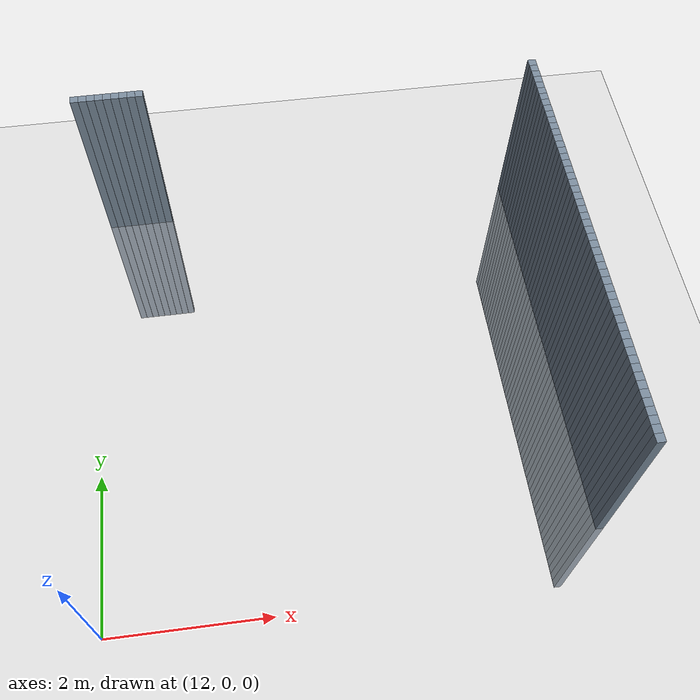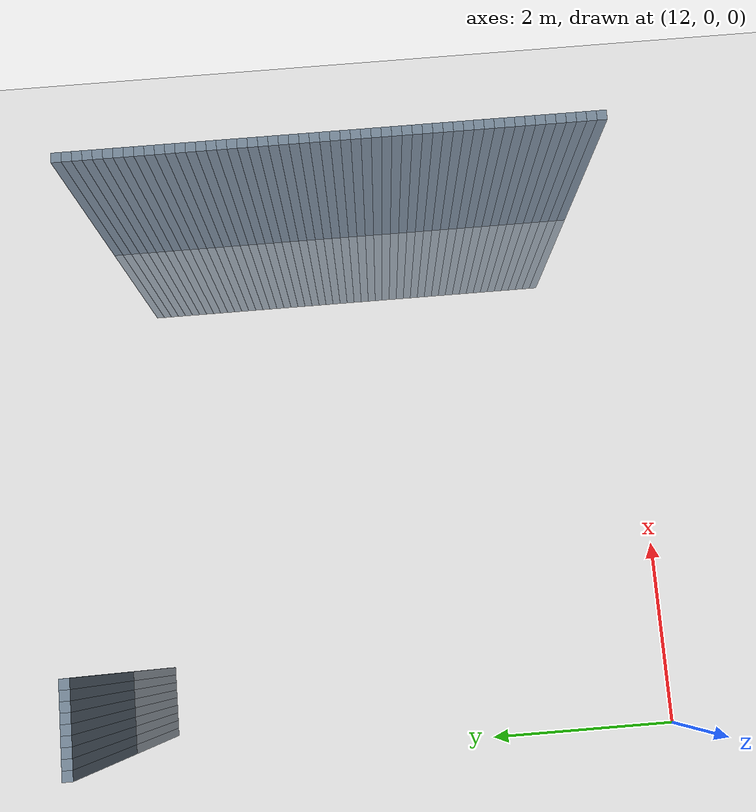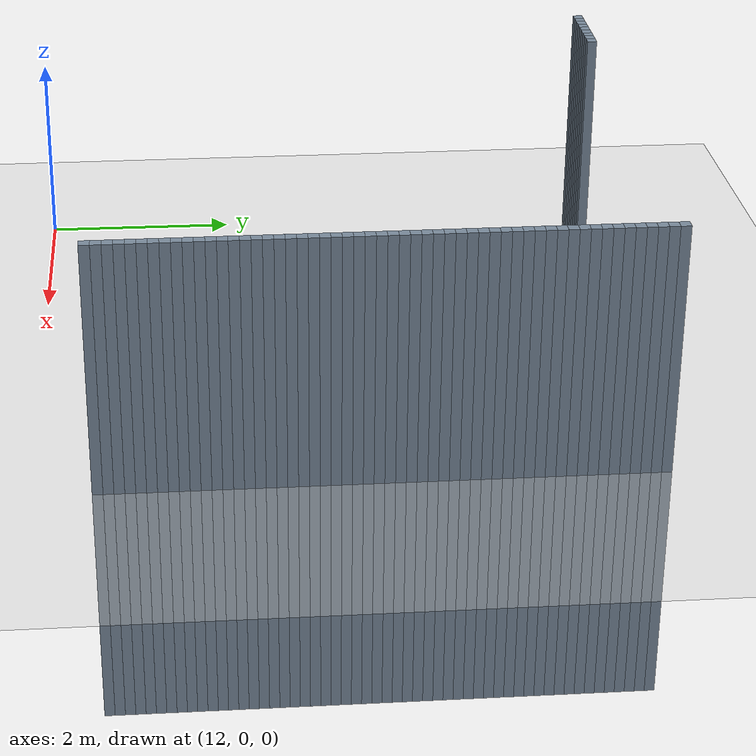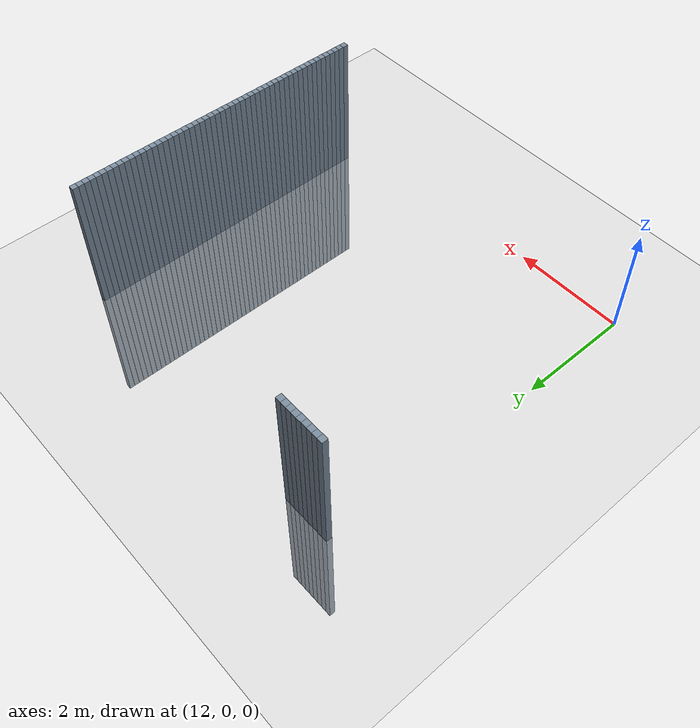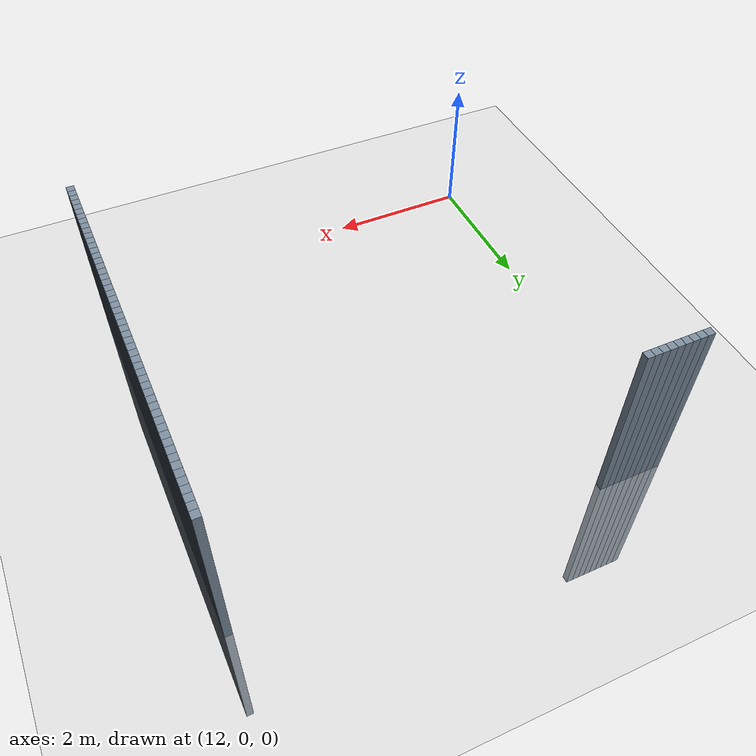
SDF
<sdf version="1.6">
 <world name="default">
  <model name="ground_plane">
   <static>1</static>
   <link name="link">
    <collision name="collision">
     <geometry><plane><normal>0 0 1</normal><size>100 100</size></plane></geometry>
     <surface><friction><ode><mu>100</mu><mu2>50</mu2></ode></friction></surface>
    </collision>
    <visual name="visual">
     <cast_shadows>0</cast_shadows>
     <geometry><plane><normal>0 0 1</normal><size>100 100</size></plane></geometry>
     <material>
      <script><uri>file://media/materials/scripts/gazebo.material</uri><name>Gazebo/Grey</name></script>
     </material>
    </visual>
   </link>
  </model>
  <model name="unit_cylinder_782">
   <static>1</static>
   <pose>12.2 6 0 0 -0 0</pose>
   <link name="link">
    <inertial>
     <mass>1</mass>
     <inertia><ixx>0.145833</ixx><ixy>0</ixy><ixz>0</ixz><iyy>0.145833</iyy><iyz>0</iyz><izz>0.125</izz></inertia>
    </inertial>
    <collision name="collision"><geometry><box><size>0.1 0.1 5</size></box></geometry></collision>
    <visual name="visual">
     <geometry><box><size>0.1 0.1 5</size></box></geometry>
     <material><ambient>0.466667 0.533333 0.6 1</ambient><diffuse>0.466667 0.533333 0.6 1</diffuse></material>
     <material>
      <script><name>Gazebo/Grey</name><uri>file://media/materials/scripts/gazebo.material</uri></script>
     </material>
    </visual>
   </link>
  </model>
  <model name="unit_cylinder_784">
   <static>1</static>
   <pose>12.3 6 0 0 -0 0</pose>
   <link name="link">
    <inertial>
     <mass>1</mass>
     <inertia><ixx>0.145833</ixx><ixy>0</ixy><ixz>0</ixz><iyy>0.145833</iyy><iyz>0</iyz><izz>0.125</izz></inertia>
    </inertial>
    <collision name="collision"><geometry><box><size>0.1 0.1 5</size></box></geometry></collision>
    <visual name="visual">
     <geometry><box><size>0.1 0.1 5</size></box></geometry>
     <material><ambient>0.466667 0.533333 0.6 1</ambient><diffuse>0.466667 0.533333 0.6 1</diffuse></material>
     <material>
      <script><name>Gazebo/Grey</name><uri>file://media/materials/scripts/gazebo.material</uri></script>
     </material>
    </visual>
   </link>
  </model>
  <model name="unit_cylinder_786">
   <static>1</static>
   <pose>12.4 6 0 0 -0 0</pose>
   <link name="link">
    <inertial>
     <mass>1</mass>
     <inertia><ixx>0.145833</ixx><ixy>0</ixy><ixz>0</ixz><iyy>0.145833</iyy><iyz>0</iyz><izz>0.125</izz></inertia>
    </inertial>
    <collision name="collision"><geometry><box><size>0.1 0.1 5</size></box></geometry></collision>
    <visual name="visual">
     <geometry><box><size>0.1 0.1 5</size></box></geometry>
     <material><ambient>0.466667 0.533333 0.6 1</ambient><diffuse>0.466667 0.533333 0.6 1</diffuse></material>
     <material>
      <script><name>Gazebo/Grey</name><uri>file://media/materials/scripts/gazebo.material</uri></script>
     </material>
    </visual>
   </link>
  </model>
  <model name="unit_cylinder_788">
   <static>1</static>
   <pose>12.5 6 0 0 -0 0</pose>
   <link name="link">
    <inertial>
     <mass>1</mass>
     <inertia><ixx>0.145833</ixx><ixy>0</ixy><ixz>0</ixz><iyy>0.145833</iyy><iyz>0</iyz><izz>0.125</izz></inertia>
    </inertial>
    <collision name="collision"><geometry><box><size>0.1 0.1 5</size></box></geometry></collision>
    <visual name="visual">
     <geometry><box><size>0.1 0.1 5</size></box></geometry>
     <material><ambient>0.466667 0.533333 0.6 1</ambient><diffuse>0.466667 0.533333 0.6 1</diffuse></material>
     <material>
      <script><name>Gazebo/Grey</name><uri>file://media/materials/scripts/gazebo.material</uri></script>
     </material>
    </visual>
   </link>
  </model>
  <model name="unit_cylinder_790">
   <static>1</static>
   <pose>12.6 6 0 0 -0 0</pose>
   <link name="link">
    <inertial>
     <mass>1</mass>
     <inertia><ixx>0.145833</ixx><ixy>0</ixy><ixz>0</ixz><iyy>0.145833</iyy><iyz>0</iyz><izz>0.125</izz></inertia>
    </inertial>
    <collision name="collision"><geometry><box><size>0.1 0.1 5</size></box></geometry></collision>
    <visual name="visual">
     <geometry><box><size>0.1 0.1 5</size></box></geometry>
     <material><ambient>0.466667 0.533333 0.6 1</ambient><diffuse>0.466667 0.533333 0.6 1</diffuse></material>
     <material>
      <script><name>Gazebo/Grey</name><uri>file://media/materials/scripts/gazebo.material</uri></script>
     </material>
    </visual>
   </link>
  </model>
  <model name="unit_cylinder_792">
   <static>1</static>
   <pose>12.7 6 0 0 -0 0</pose>
   <link name="link">
    <inertial>
     <mass>1</mass>
     <inertia><ixx>0.145833</ixx><ixy>0</ixy><ixz>0</ixz><iyy>0.145833</iyy><iyz>0</iyz><izz>0.125</izz></inertia>
    </inertial>
    <collision name="collision"><geometry><box><size>0.1 0.1 5</size></box></geometry></collision>
    <visual name="visual">
     <geometry><box><size>0.1 0.1 5</size></box></geometry>
     <material><ambient>0.466667 0.533333 0.6 1</ambient><diffuse>0.466667 0.533333 0.6 1</diffuse></material>
     <material>
      <script><name>Gazebo/Grey</name><uri>file://media/materials/scripts/gazebo.material</uri></script>
     </material>
    </visual>
   </link>
  </model>
  <model name="unit_cylinder_794">
   <static>1</static>
   <pose>12.8 6 0 0 -0 0</pose>
   <link name="link">
    <inertial>
     <mass>1</mass>
     <inertia><ixx>0.145833</ixx><ixy>0</ixy><ixz>0</ixz><iyy>0.145833</iyy><iyz>0</iyz><izz>0.125</izz></inertia>
    </inertial>
    <collision name="collision"><geometry><box><size>0.1 0.1 5</size></box></geometry></collision>
    <visual name="visual">
     <geometry><box><size>0.1 0.1 5</size></box></geometry>
     <material><ambient>0.466667 0.533333 0.6 1</ambient><diffuse>0.466667 0.533333 0.6 1</diffuse></material>
     <material>
      <script><name>Gazebo/Grey</name><uri>file://media/materials/scripts/gazebo.material</uri></script>
     </material>
    </visual>
   </link>
  </model>
  <model name="unit_cylinder_796">
   <static>1</static>
   <pose>12.9 6 0 0 -0 0</pose>
   <link name="link">
    <inertial>
     <mass>1</mass>
     <inertia><ixx>0.145833</ixx><ixy>0</ixy><ixz>0</ixz><iyy>0.145833</iyy><iyz>0</iyz><izz>0.125</izz></inertia>
    </inertial>
    <collision name="collision"><geometry><box><size>0.1 0.1 5</size></box></geometry></collision>
    <visual name="visual">
     <geometry><box><size>0.1 0.1 5</size></box></geometry>
     <material><ambient>0.466667 0.533333 0.6 1</ambient><diffuse>0.466667 0.533333 0.6 1</diffuse></material>
     <material>
      <script><name>Gazebo/Grey</name><uri>file://media/materials/scripts/gazebo.material</uri></script>
     </material>
    </visual>
   </link>
  </model>
  <model name="unit_cylinder_798">
   <static>1</static>
   <pose>13 6 0 0 -0 0</pose>
   <link name="link">
    <inertial>
     <mass>1</mass>
     <inertia><ixx>0.145833</ixx><ixy>0</ixy><ixz>0</ixz><iyy>0.145833</iyy><iyz>0</iyz><izz>0.125</izz></inertia>
    </inertial>
    <collision name="collision"><geometry><box><size>0.1 0.1 5</size></box></geometry></collision>
    <visual name="visual">
     <geometry><box><size>0.1 0.1 5</size></box></geometry>
     <material><ambient>0.466667 0.533333 0.6 1</ambient><diffuse>0.466667 0.533333 0.6 1</diffuse></material>
     <material>
      <script><name>Gazebo/Grey</name><uri>file://media/materials/scripts/gazebo.material</uri></script>
     </material>
    </visual>
   </link>
  </model>
  <model name="unit_cylinder_903">
   <static>1</static>
   <pose>18 0.6 0 0 -0 0</pose>
   <link name="link">
    <inertial>
     <mass>1</mass>
     <inertia><ixx>0.145833</ixx><ixy>0</ixy><ixz>0</ixz><iyy>0.145833</iyy><iyz>0</iyz><izz>0.125</izz></inertia>
    </inertial>
    <collision name="collision"><geometry><box><size>0.1 0.1 5</size></box></geometry></collision>
    <visual name="visual">
     <geometry><box><size>0.1 0.1 5</size></box></geometry>
     <material><ambient>0.466667 0.533333 0.6 1</ambient><diffuse>0.466667 0.533333 0.6 1</diffuse></material>
     <material>
      <script><name>Gazebo/Grey</name><uri>file://media/materials/scripts/gazebo.material</uri></script>
     </material>
    </visual>
   </link>
  </model>
  <model name="unit_cylinder_904">
   <static>1</static>
   <pose>18 0.7 0 0 -0 0</pose>
   <link name="link">
    <inertial>
     <mass>1</mass>
     <inertia><ixx>0.145833</ixx><ixy>0</ixy><ixz>0</ixz><iyy>0.145833</iyy><iyz>0</iyz><izz>0.125</izz></inertia>
    </inertial>
    <collision name="collision"><geometry><box><size>0.1 0.1 5</size></box></geometry></collision>
    <visual name="visual">
     <geometry><box><size>0.1 0.1 5</size></box></geometry>
     <material><ambient>0.466667 0.533333 0.6 1</ambient><diffuse>0.466667 0.533333 0.6 1</diffuse></material>
     <material>
      <script><name>Gazebo/Grey</name><uri>file://media/materials/scripts/gazebo.material</uri></script>
     </material>
    </visual>
   </link>
  </model>
  <model name="unit_cylinder_905">
   <static>1</static>
   <pose>18 0.8 0 0 -0 0</pose>
   <link name="link">
    <inertial>
     <mass>1</mass>
     <inertia><ixx>0.145833</ixx><ixy>0</ixy><ixz>0</ixz><iyy>0.145833</iyy><iyz>0</iyz><izz>0.125</izz></inertia>
    </inertial>
    <collision name="collision"><geometry><box><size>0.1 0.1 5</size></box></geometry></collision>
    <visual name="visual">
     <geometry><box><size>0.1 0.1 5</size></box></geometry>
     <material><ambient>0.466667 0.533333 0.6 1</ambient><diffuse>0.466667 0.533333 0.6 1</diffuse></material>
     <material>
      <script><name>Gazebo/Grey</name><uri>file://media/materials/scripts/gazebo.material</uri></script>
     </material>
    </visual>
   </link>
  </model>
  <model name="unit_cylinder_906">
   <static>1</static>
   <pose>18 0.9 0 0 -0 0</pose>
   <link name="link">
    <inertial>
     <mass>1</mass>
     <inertia><ixx>0.145833</ixx><ixy>0</ixy><ixz>0</ixz><iyy>0.145833</iyy><iyz>0</iyz><izz>0.125</izz></inertia>
    </inertial>
    <collision name="collision"><geometry><box><size>0.1 0.1 5</size></box></geometry></collision>
    <visual name="visual">
     <geometry><box><size>0.1 0.1 5</size></box></geometry>
     <material><ambient>0.466667 0.533333 0.6 1</ambient><diffuse>0.466667 0.533333 0.6 1</diffuse></material>
     <material>
      <script><name>Gazebo/Grey</name><uri>file://media/materials/scripts/gazebo.material</uri></script>
     </material>
    </visual>
   </link>
  </model>
  <model name="unit_cylinder_907">
   <static>1</static>
   <pose>18 1 0 0 -0 0</pose>
   <link name="link">
    <inertial>
     <mass>1</mass>
     <inertia><ixx>0.145833</ixx><ixy>0</ixy><ixz>0</ixz><iyy>0.145833</iyy><iyz>0</iyz><izz>0.125</izz></inertia>
    </inertial>
    <collision name="collision"><geometry><box><size>0.1 0.1 5</size></box></geometry></collision>
    <visual name="visual">
     <geometry><box><size>0.1 0.1 5</size></box></geometry>
     <material><ambient>0.466667 0.533333 0.6 1</ambient><diffuse>0.466667 0.533333 0.6 1</diffuse></material>
     <material>
      <script><name>Gazebo/Grey</name><uri>file://media/materials/scripts/gazebo.material</uri></script>
     </material>
    </visual>
   </link>
  </model>
  <model name="unit_cylinder_908">
   <static>1</static>
   <pose>18 1.1 0 0 -0 0</pose>
   <link name="link">
    <inertial>
     <mass>1</mass>
     <inertia><ixx>0.145833</ixx><ixy>0</ixy><ixz>0</ixz><iyy>0.145833</iyy><iyz>0</iyz><izz>0.125</izz></inertia>
    </inertial>
    <collision name="collision"><geometry><box><size>0.1 0.1 5</size></box></geometry></collision>
    <visual name="visual">
     <geometry><box><size>0.1 0.1 5</size></box></geometry>
     <material><ambient>0.466667 0.533333 0.6 1</ambient><diffuse>0.466667 0.533333 0.6 1</diffuse></material>
     <material>
      <script><name>Gazebo/Grey</name><uri>file://media/materials/scripts/gazebo.material</uri></script>
     </material>
    </visual>
   </link>
  </model>
  <model name="unit_cylinder_909">
   <static>1</static>
   <pose>18 1.2 0 0 -0 0</pose>
   <link name="link">
    <inertial>
     <mass>1</mass>
     <inertia><ixx>0.145833</ixx><ixy>0</ixy><ixz>0</ixz><iyy>0.145833</iyy><iyz>0</iyz><izz>0.125</izz></inertia>
    </inertial>
    <collision name="collision"><geometry><box><size>0.1 0.1 5</size></box></geometry></collision>
    <visual name="visual">
     <geometry><box><size>0.1 0.1 5</size></box></geometry>
     <material><ambient>0.466667 0.533333 0.6 1</ambient><diffuse>0.466667 0.533333 0.6 1</diffuse></material>
     <material>
      <script><name>Gazebo/Grey</name><uri>file://media/materials/scripts/gazebo.material</uri></script>
     </material>
    </visual>
   </link>
  </model>
  <model name="unit_cylinder_910">
   <static>1</static>
   <pose>18 1.3 0 0 -0 0</pose>
   <link name="link">
    <inertial>
     <mass>1</mass>
     <inertia><ixx>0.145833</ixx><ixy>0</ixy><ixz>0</ixz><iyy>0.145833</iyy><iyz>0</iyz><izz>0.125</izz></inertia>
    </inertial>
    <collision name="collision"><geometry><box><size>0.1 0.1 5</size></box></geometry></collision>
    <visual name="visual">
     <geometry><box><size>0.1 0.1 5</size></box></geometry>
     <material><ambient>0.466667 0.533333 0.6 1</ambient><diffuse>0.466667 0.533333 0.6 1</diffuse></material>
     <material>
      <script><name>Gazebo/Grey</name><uri>file://media/materials/scripts/gazebo.material</uri></script>
     </material>
    </visual>
   </link>
  </model>
  <model name="unit_cylinder_911">
   <static>1</static>
   <pose>18 1.4 0 0 -0 0</pose>
   <link name="link">
    <inertial>
     <mass>1</mass>
     <inertia><ixx>0.145833</ixx><ixy>0</ixy><ixz>0</ixz><iyy>0.145833</iyy><iyz>0</iyz><izz>0.125</izz></inertia>
    </inertial>
    <collision name="collision"><geometry><box><size>0.1 0.1 5</size></box></geometry></collision>
    <visual name="visual">
     <geometry><box><size>0.1 0.1 5</size></box></geometry>
     <material><ambient>0.466667 0.533333 0.6 1</ambient><diffuse>0.466667 0.533333 0.6 1</diffuse></material>
     <material>
      <script><name>Gazebo/Grey</name><uri>file://media/materials/scripts/gazebo.material</uri></script>
     </material>
    </visual>
   </link>
  </model>
  <model name="unit_cylinder_912">
   <static>1</static>
   <pose>18 1.5 0 0 -0 0</pose>
   <link name="link">
    <inertial>
     <mass>1</mass>
     <inertia><ixx>0.145833</ixx><ixy>0</ixy><ixz>0</ixz><iyy>0.145833</iyy><iyz>0</iyz><izz>0.125</izz></inertia>
    </inertial>
    <collision name="collision"><geometry><box><size>0.1 0.1 5</size></box></geometry></collision>
    <visual name="visual">
     <geometry><box><size>0.1 0.1 5</size></box></geometry>
     <material><ambient>0.466667 0.533333 0.6 1</ambient><diffuse>0.466667 0.533333 0.6 1</diffuse></material>
     <material>
      <script><name>Gazebo/Grey</name><uri>file://media/materials/scripts/gazebo.material</uri></script>
     </material>
    </visual>
   </link>
  </model>
  <model name="unit_cylinder_913">
   <static>1</static>
   <pose>18 1.6 0 0 -0 0</pose>
   <link name="link">
    <inertial>
     <mass>1</mass>
     <inertia><ixx>0.145833</ixx><ixy>0</ixy><ixz>0</ixz><iyy>0.145833</iyy><iyz>0</iyz><izz>0.125</izz></inertia>
    </inertial>
    <collision name="collision"><geometry><box><size>0.1 0.1 5</size></box></geometry></collision>
    <visual name="visual">
     <geometry><box><size>0.1 0.1 5</size></box></geometry>
     <material><ambient>0.466667 0.533333 0.6 1</ambient><diffuse>0.466667 0.533333 0.6 1</diffuse></material>
     <material>
      <script><name>Gazebo/Grey</name><uri>file://media/materials/scripts/gazebo.material</uri></script>
     </material>
    </visual>
   </link>
  </model>
  <model name="unit_cylinder_914">
   <static>1</static>
   <pose>18 1.7 0 0 -0 0</pose>
   <link name="link">
    <inertial>
     <mass>1</mass>
     <inertia><ixx>0.145833</ixx><ixy>0</ixy><ixz>0</ixz><iyy>0.145833</iyy><iyz>0</iyz><izz>0.125</izz></inertia>
    </inertial>
    <collision name="collision"><geometry><box><size>0.1 0.1 5</size></box></geometry></collision>
    <visual name="visual">
     <geometry><box><size>0.1 0.1 5</size></box></geometry>
     <material><ambient>0.466667 0.533333 0.6 1</ambient><diffuse>0.466667 0.533333 0.6 1</diffuse></material>
     <material>
      <script><name>Gazebo/Grey</name><uri>file://media/materials/scripts/gazebo.material</uri></script>
     </material>
    </visual>
   </link>
  </model>
  <model name="unit_cylinder_915">
   <static>1</static>
   <pose>18 1.8 0 0 -0 0</pose>
   <link name="link">
    <inertial>
     <mass>1</mass>
     <inertia><ixx>0.145833</ixx><ixy>0</ixy><ixz>0</ixz><iyy>0.145833</iyy><iyz>0</iyz><izz>0.125</izz></inertia>
    </inertial>
    <collision name="collision"><geometry><box><size>0.1 0.1 5</size></box></geometry></collision>
    <visual name="visual">
     <geometry><box><size>0.1 0.1 5</size></box></geometry>
     <material><ambient>0.466667 0.533333 0.6 1</ambient><diffuse>0.466667 0.533333 0.6 1</diffuse></material>
     <material>
      <script><name>Gazebo/Grey</name><uri>file://media/materials/scripts/gazebo.material</uri></script>
     </material>
    </visual>
   </link>
  </model>
  <model name="unit_cylinder_916">
   <static>1</static>
   <pose>18 1.9 0 0 -0 0</pose>
   <link name="link">
    <inertial>
     <mass>1</mass>
     <inertia><ixx>0.145833</ixx><ixy>0</ixy><ixz>0</ixz><iyy>0.145833</iyy><iyz>0</iyz><izz>0.125</izz></inertia>
    </inertial>
    <collision name="collision"><geometry><box><size>0.1 0.1 5</size></box></geometry></collision>
    <visual name="visual">
     <geometry><box><size>0.1 0.1 5</size></box></geometry>
     <material><ambient>0.466667 0.533333 0.6 1</ambient><diffuse>0.466667 0.533333 0.6 1</diffuse></material>
     <material>
      <script><name>Gazebo/Grey</name><uri>file://media/materials/scripts/gazebo.material</uri></script>
     </material>
    </visual>
   </link>
  </model>
  <model name="unit_cylinder_917">
   <static>1</static>
   <pose>18 2 0 0 -0 0</pose>
   <link name="link">
    <inertial>
     <mass>1</mass>
     <inertia><ixx>0.145833</ixx><ixy>0</ixy><ixz>0</ixz><iyy>0.145833</iyy><iyz>0</iyz><izz>0.125</izz></inertia>
    </inertial>
    <collision name="collision"><geometry><box><size>0.1 0.1 5</size></box></geometry></collision>
    <visual name="visual">
     <geometry><box><size>0.1 0.1 5</size></box></geometry>
     <material><ambient>0.466667 0.533333 0.6 1</ambient><diffuse>0.466667 0.533333 0.6 1</diffuse></material>
     <material>
      <script><name>Gazebo/Grey</name><uri>file://media/materials/scripts/gazebo.material</uri></script>
     </material>
    </visual>
   </link>
  </model>
  <model name="unit_cylinder_918">
   <static>1</static>
   <pose>18 2.1 0 0 -0 0</pose>
   <link name="link">
    <inertial>
     <mass>1</mass>
     <inertia><ixx>0.145833</ixx><ixy>0</ixy><ixz>0</ixz><iyy>0.145833</iyy><iyz>0</iyz><izz>0.125</izz></inertia>
    </inertial>
    <collision name="collision"><geometry><box><size>0.1 0.1 5</size></box></geometry></collision>
    <visual name="visual">
     <geometry><box><size>0.1 0.1 5</size></box></geometry>
     <material><ambient>0.466667 0.533333 0.6 1</ambient><diffuse>0.466667 0.533333 0.6 1</diffuse></material>
     <material>
      <script><name>Gazebo/Grey</name><uri>file://media/materials/scripts/gazebo.material</uri></script>
     </material>
    </visual>
   </link>
  </model>
  <model name="unit_cylinder_919">
   <static>1</static>
   <pose>18 2.2 0 0 -0 0</pose>
   <link name="link">
    <inertial>
     <mass>1</mass>
     <inertia><ixx>0.145833</ixx><ixy>0</ixy><ixz>0</ixz><iyy>0.145833</iyy><iyz>0</iyz><izz>0.125</izz></inertia>
    </inertial>
    <collision name="collision"><geometry><box><size>0.1 0.1 5</size></box></geometry></collision>
    <visual name="visual">
     <geometry><box><size>0.1 0.1 5</size></box></geometry>
     <material><ambient>0.466667 0.533333 0.6 1</ambient><diffuse>0.466667 0.533333 0.6 1</diffuse></material>
     <material>
      <script><name>Gazebo/Grey</name><uri>file://media/materials/scripts/gazebo.material</uri></script>
     </material>
    </visual>
   </link>
  </model>
  <model name="unit_cylinder_920">
   <static>1</static>
   <pose>18 2.3 0 0 -0 0</pose>
   <link name="link">
    <inertial>
     <mass>1</mass>
     <inertia><ixx>0.145833</ixx><ixy>0</ixy><ixz>0</ixz><iyy>0.145833</iyy><iyz>0</iyz><izz>0.125</izz></inertia>
    </inertial>
    <collision name="collision"><geometry><box><size>0.1 0.1 5</size></box></geometry></collision>
    <visual name="visual">
     <geometry><box><size>0.1 0.1 5</size></box></geometry>
     <material><ambient>0.466667 0.533333 0.6 1</ambient><diffuse>0.466667 0.533333 0.6 1</diffuse></material>
     <material>
      <script><name>Gazebo/Grey</name><uri>file://media/materials/scripts/gazebo.material</uri></script>
     </material>
    </visual>
   </link>
  </model>
  <model name="unit_cylinder_921">
   <static>1</static>
   <pose>18 2.4 0 0 -0 0</pose>
   <link name="link">
    <inertial>
     <mass>1</mass>
     <inertia><ixx>0.145833</ixx><ixy>0</ixy><ixz>0</ixz><iyy>0.145833</iyy><iyz>0</iyz><izz>0.125</izz></inertia>
    </inertial>
    <collision name="collision"><geometry><box><size>0.1 0.1 5</size></box></geometry></collision>
    <visual name="visual">
     <geometry><box><size>0.1 0.1 5</size></box></geometry>
     <material><ambient>0.466667 0.533333 0.6 1</ambient><diffuse>0.466667 0.533333 0.6 1</diffuse></material>
     <material>
      <script><name>Gazebo/Grey</name><uri>file://media/materials/scripts/gazebo.material</uri></script>
     </material>
    </visual>
   </link>
  </model>
  <model name="unit_cylinder_922">
   <static>1</static>
   <pose>18 2.5 0 0 -0 0</pose>
   <link name="link">
    <inertial>
     <mass>1</mass>
     <inertia><ixx>0.145833</ixx><ixy>0</ixy><ixz>0</ixz><iyy>0.145833</iyy><iyz>0</iyz><izz>0.125</izz></inertia>
    </inertial>
    <collision name="collision"><geometry><box><size>0.1 0.1 5</size></box></geometry></collision>
    <visual name="visual">
     <geometry><box><size>0.1 0.1 5</size></box></geometry>
     <material><ambient>0.466667 0.533333 0.6 1</ambient><diffuse>0.466667 0.533333 0.6 1</diffuse></material>
     <material>
      <script><name>Gazebo/Grey</name><uri>file://media/materials/scripts/gazebo.material</uri></script>
     </material>
    </visual>
   </link>
  </model>
  <model name="unit_cylinder_923">
   <static>1</static>
   <pose>18 2.6 0 0 -0 0</pose>
   <link name="link">
    <inertial>
     <mass>1</mass>
     <inertia><ixx>0.145833</ixx><ixy>0</ixy><ixz>0</ixz><iyy>0.145833</iyy><iyz>0</iyz><izz>0.125</izz></inertia>
    </inertial>
    <collision name="collision"><geometry><box><size>0.1 0.1 5</size></box></geometry></collision>
    <visual name="visual">
     <geometry><box><size>0.1 0.1 5</size></box></geometry>
     <material><ambient>0.466667 0.533333 0.6 1</ambient><diffuse>0.466667 0.533333 0.6 1</diffuse></material>
     <material>
      <script><name>Gazebo/Grey</name><uri>file://media/materials/scripts/gazebo.material</uri></script>
     </material>
    </visual>
   </link>
  </model>
  <model name="unit_cylinder_924">
   <static>1</static>
   <pose>18 2.7 0 0 -0 0</pose>
   <link name="link">
    <inertial>
     <mass>1</mass>
     <inertia><ixx>0.145833</ixx><ixy>0</ixy><ixz>0</ixz><iyy>0.145833</iyy><iyz>0</iyz><izz>0.125</izz></inertia>
    </inertial>
    <collision name="collision"><geometry><box><size>0.1 0.1 5</size></box></geometry></collision>
    <visual name="visual">
     <geometry><box><size>0.1 0.1 5</size></box></geometry>
     <material><ambient>0.466667 0.533333 0.6 1</ambient><diffuse>0.466667 0.533333 0.6 1</diffuse></material>
     <material>
      <script><name>Gazebo/Grey</name><uri>file://media/materials/scripts/gazebo.material</uri></script>
     </material>
    </visual>
   </link>
  </model>
  <model name="unit_cylinder_925">
   <static>1</static>
   <pose>18 2.8 0 0 -0 0</pose>
   <link name="link">
    <inertial>
     <mass>1</mass>
     <inertia><ixx>0.145833</ixx><ixy>0</ixy><ixz>0</ixz><iyy>0.145833</iyy><iyz>0</iyz><izz>0.125</izz></inertia>
    </inertial>
    <collision name="collision"><geometry><box><size>0.1 0.1 5</size></box></geometry></collision>
    <visual name="visual">
     <geometry><box><size>0.1 0.1 5</size></box></geometry>
     <material><ambient>0.466667 0.533333 0.6 1</ambient><diffuse>0.466667 0.533333 0.6 1</diffuse></material>
     <material>
      <script><name>Gazebo/Grey</name><uri>file://media/materials/scripts/gazebo.material</uri></script>
     </material>
    </visual>
   </link>
  </model>
  <model name="unit_cylinder_926">
   <static>1</static>
   <pose>18 2.9 0 0 -0 0</pose>
   <link name="link">
    <inertial>
     <mass>1</mass>
     <inertia><ixx>0.145833</ixx><ixy>0</ixy><ixz>0</ixz><iyy>0.145833</iyy><iyz>0</iyz><izz>0.125</izz></inertia>
    </inertial>
    <collision name="collision"><geometry><box><size>0.1 0.1 5</size></box></geometry></collision>
    <visual name="visual">
     <geometry><box><size>0.1 0.1 5</size></box></geometry>
     <material><ambient>0.466667 0.533333 0.6 1</ambient><diffuse>0.466667 0.533333 0.6 1</diffuse></material>
     <material>
      <script><name>Gazebo/Grey</name><uri>file://media/materials/scripts/gazebo.material</uri></script>
     </material>
    </visual>
   </link>
  </model>
  <model name="unit_cylinder_927">
   <static>1</static>
   <pose>18 3 0 0 -0 0</pose>
   <link name="link">
    <inertial>
     <mass>1</mass>
     <inertia><ixx>0.145833</ixx><ixy>0</ixy><ixz>0</ixz><iyy>0.145833</iyy><iyz>0</iyz><izz>0.125</izz></inertia>
    </inertial>
    <collision name="collision"><geometry><box><size>0.1 0.1 5</size></box></geometry></collision>
    <visual name="visual">
     <geometry><box><size>0.1 0.1 5</size></box></geometry>
     <material><ambient>0.466667 0.533333 0.6 1</ambient><diffuse>0.466667 0.533333 0.6 1</diffuse></material>
     <material>
      <script><name>Gazebo/Grey</name><uri>file://media/materials/scripts/gazebo.material</uri></script>
     </material>
    </visual>
   </link>
  </model>
  <model name="unit_cylinder_928">
   <static>1</static>
   <pose>18 3.1 0 0 -0 0</pose>
   <link name="link">
    <inertial>
     <mass>1</mass>
     <inertia><ixx>0.145833</ixx><ixy>0</ixy><ixz>0</ixz><iyy>0.145833</iyy><iyz>0</iyz><izz>0.125</izz></inertia>
    </inertial>
    <collision name="collision"><geometry><box><size>0.1 0.1 5</size></box></geometry></collision>
    <visual name="visual">
     <geometry><box><size>0.1 0.1 5</size></box></geometry>
     <material><ambient>0.466667 0.533333 0.6 1</ambient><diffuse>0.466667 0.533333 0.6 1</diffuse></material>
     <material>
      <script><name>Gazebo/Grey</name><uri>file://media/materials/scripts/gazebo.material</uri></script>
     </material>
    </visual>
   </link>
  </model>
  <model name="unit_cylinder_929">
   <static>1</static>
   <pose>18 3.2 0 0 -0 0</pose>
   <link name="link">
    <inertial>
     <mass>1</mass>
     <inertia><ixx>0.145833</ixx><ixy>0</ixy><ixz>0</ixz><iyy>0.145833</iyy><iyz>0</iyz><izz>0.125</izz></inertia>
    </inertial>
    <collision name="collision"><geometry><box><size>0.1 0.1 5</size></box></geometry></collision>
    <visual name="visual">
     <geometry><box><size>0.1 0.1 5</size></box></geometry>
     <material><ambient>0.466667 0.533333 0.6 1</ambient><diffuse>0.466667 0.533333 0.6 1</diffuse></material>
     <material>
      <script><name>Gazebo/Grey</name><uri>file://media/materials/scripts/gazebo.material</uri></script>
     </material>
    </visual>
   </link>
  </model>
  <model name="unit_cylinder_930">
   <static>1</static>
   <pose>18 3.3 0 0 -0 0</pose>
   <link name="link">
    <inertial>
     <mass>1</mass>
     <inertia><ixx>0.145833</ixx><ixy>0</ixy><ixz>0</ixz><iyy>0.145833</iyy><iyz>0</iyz><izz>0.125</izz></inertia>
    </inertial>
    <collision name="collision"><geometry><box><size>0.1 0.1 5</size></box></geometry></collision>
    <visual name="visual">
     <geometry><box><size>0.1 0.1 5</size></box></geometry>
     <material><ambient>0.466667 0.533333 0.6 1</ambient><diffuse>0.466667 0.533333 0.6 1</diffuse></material>
     <material>
      <script><name>Gazebo/Grey</name><uri>file://media/materials/scripts/gazebo.material</uri></script>
     </material>
    </visual>
   </link>
  </model>
  <model name="unit_cylinder_931">
   <static>1</static>
   <pose>18 3.4 0 0 -0 0</pose>
   <link name="link">
    <inertial>
     <mass>1</mass>
     <inertia><ixx>0.145833</ixx><ixy>0</ixy><ixz>0</ixz><iyy>0.145833</iyy><iyz>0</iyz><izz>0.125</izz></inertia>
    </inertial>
    <collision name="collision"><geometry><box><size>0.1 0.1 5</size></box></geometry></collision>
    <visual name="visual">
     <geometry><box><size>0.1 0.1 5</size></box></geometry>
     <material><ambient>0.466667 0.533333 0.6 1</ambient><diffuse>0.466667 0.533333 0.6 1</diffuse></material>
     <material>
      <script><name>Gazebo/Grey</name><uri>file://media/materials/scripts/gazebo.material</uri></script>
     </material>
    </visual>
   </link>
  </model>
  <model name="unit_cylinder_932">
   <static>1</static>
   <pose>18 3.5 0 0 -0 0</pose>
   <link name="link">
    <inertial>
     <mass>1</mass>
     <inertia><ixx>0.145833</ixx><ixy>0</ixy><ixz>0</ixz><iyy>0.145833</iyy><iyz>0</iyz><izz>0.125</izz></inertia>
    </inertial>
    <collision name="collision"><geometry><box><size>0.1 0.1 5</size></box></geometry></collision>
    <visual name="visual">
     <geometry><box><size>0.1 0.1 5</size></box></geometry>
     <material><ambient>0.466667 0.533333 0.6 1</ambient><diffuse>0.466667 0.533333 0.6 1</diffuse></material>
     <material>
      <script><name>Gazebo/Grey</name><uri>file://media/materials/scripts/gazebo.material</uri></script>
     </material>
    </visual>
   </link>
  </model>
  <model name="unit_cylinder_933">
   <static>1</static>
   <pose>18 3.6 0 0 -0 0</pose>
   <link name="link">
    <inertial>
     <mass>1</mass>
     <inertia><ixx>0.145833</ixx><ixy>0</ixy><ixz>0</ixz><iyy>0.145833</iyy><iyz>0</iyz><izz>0.125</izz></inertia>
    </inertial>
    <collision name="collision"><geometry><box><size>0.1 0.1 5</size></box></geometry></collision>
    <visual name="visual">
     <geometry><box><size>0.1 0.1 5</size></box></geometry>
     <material><ambient>0.466667 0.533333 0.6 1</ambient><diffuse>0.466667 0.533333 0.6 1</diffuse></material>
     <material>
      <script><name>Gazebo/Grey</name><uri>file://media/materials/scripts/gazebo.material</uri></script>
     </material>
    </visual>
   </link>
  </model>
  <model name="unit_cylinder_934">
   <static>1</static>
   <pose>18 3.7 0 0 -0 0</pose>
   <link name="link">
    <inertial>
     <mass>1</mass>
     <inertia><ixx>0.145833</ixx><ixy>0</ixy><ixz>0</ixz><iyy>0.145833</iyy><iyz>0</iyz><izz>0.125</izz></inertia>
    </inertial>
    <collision name="collision"><geometry><box><size>0.1 0.1 5</size></box></geometry></collision>
    <visual name="visual">
     <geometry><box><size>0.1 0.1 5</size></box></geometry>
     <material><ambient>0.466667 0.533333 0.6 1</ambient><diffuse>0.466667 0.533333 0.6 1</diffuse></material>
     <material>
      <script><name>Gazebo/Grey</name><uri>file://media/materials/scripts/gazebo.material</uri></script>
     </material>
    </visual>
   </link>
  </model>
  <model name="unit_cylinder_935">
   <static>1</static>
   <pose>18 3.8 0 0 -0 0</pose>
   <link name="link">
    <inertial>
     <mass>1</mass>
     <inertia><ixx>0.145833</ixx><ixy>0</ixy><ixz>0</ixz><iyy>0.145833</iyy><iyz>0</iyz><izz>0.125</izz></inertia>
    </inertial>
    <collision name="collision"><geometry><box><size>0.1 0.1 5</size></box></geometry></collision>
    <visual name="visual">
     <geometry><box><size>0.1 0.1 5</size></box></geometry>
     <material><ambient>0.466667 0.533333 0.6 1</ambient><diffuse>0.466667 0.533333 0.6 1</diffuse></material>
     <material>
      <script><name>Gazebo/Grey</name><uri>file://media/materials/scripts/gazebo.material</uri></script>
     </material>
    </visual>
   </link>
  </model>
  <model name="unit_cylinder_936">
   <static>1</static>
   <pose>18 3.9 0 0 -0 0</pose>
   <link name="link">
    <inertial>
     <mass>1</mass>
     <inertia><ixx>0.145833</ixx><ixy>0</ixy><ixz>0</ixz><iyy>0.145833</iyy><iyz>0</iyz><izz>0.125</izz></inertia>
    </inertial>
    <collision name="collision"><geometry><box><size>0.1 0.1 5</size></box></geometry></collision>
    <visual name="visual">
     <geometry><box><size>0.1 0.1 5</size></box></geometry>
     <material><ambient>0.466667 0.533333 0.6 1</ambient><diffuse>0.466667 0.533333 0.6 1</diffuse></material>
     <material>
      <script><name>Gazebo/Grey</name><uri>file://media/materials/scripts/gazebo.material</uri></script>
     </material>
    </visual>
   </link>
  </model>
  <model name="unit_cylinder_937">
   <static>1</static>
   <pose>18 4 0 0 -0 0</pose>
   <link name="link">
    <inertial>
     <mass>1</mass>
     <inertia><ixx>0.145833</ixx><ixy>0</ixy><ixz>0</ixz><iyy>0.145833</iyy><iyz>0</iyz><izz>0.125</izz></inertia>
    </inertial>
    <collision name="collision"><geometry><box><size>0.1 0.1 5</size></box></geometry></collision>
    <visual name="visual">
     <geometry><box><size>0.1 0.1 5</size></box></geometry>
     <material><ambient>0.466667 0.533333 0.6 1</ambient><diffuse>0.466667 0.533333 0.6 1</diffuse></material>
     <material>
      <script><name>Gazebo/Grey</name><uri>file://media/materials/scripts/gazebo.material</uri></script>
     </material>
    </visual>
   </link>
  </model>
  <model name="unit_cylinder_938">
   <static>1</static>
   <pose>18 4.1 0 0 -0 0</pose>
   <link name="link">
    <inertial>
     <mass>1</mass>
     <inertia><ixx>0.145833</ixx><ixy>0</ixy><ixz>0</ixz><iyy>0.145833</iyy><iyz>0</iyz><izz>0.125</izz></inertia>
    </inertial>
    <collision name="collision"><geometry><box><size>0.1 0.1 5</size></box></geometry></collision>
    <visual name="visual">
     <geometry><box><size>0.1 0.1 5</size></box></geometry>
     <material><ambient>0.466667 0.533333 0.6 1</ambient><diffuse>0.466667 0.533333 0.6 1</diffuse></material>
     <material>
      <script><name>Gazebo/Grey</name><uri>file://media/materials/scripts/gazebo.material</uri></script>
     </material>
    </visual>
   </link>
  </model>
  <model name="unit_cylinder_939">
   <static>1</static>
   <pose>18 4.2 0 0 -0 0</pose>
   <link name="link">
    <inertial>
     <mass>1</mass>
     <inertia><ixx>0.145833</ixx><ixy>0</ixy><ixz>0</ixz><iyy>0.145833</iyy><iyz>0</iyz><izz>0.125</izz></inertia>
    </inertial>
    <collision name="collision"><geometry><box><size>0.1 0.1 5</size></box></geometry></collision>
    <visual name="visual">
     <geometry><box><size>0.1 0.1 5</size></box></geometry>
     <material><ambient>0.466667 0.533333 0.6 1</ambient><diffuse>0.466667 0.533333 0.6 1</diffuse></material>
     <material>
      <script><name>Gazebo/Grey</name><uri>file://media/materials/scripts/gazebo.material</uri></script>
     </material>
    </visual>
   </link>
  </model>
  <model name="unit_cylinder_940">
   <static>1</static>
   <pose>18 4.3 0 0 -0 0</pose>
   <link name="link">
    <inertial>
     <mass>1</mass>
     <inertia><ixx>0.145833</ixx><ixy>0</ixy><ixz>0</ixz><iyy>0.145833</iyy><iyz>0</iyz><izz>0.125</izz></inertia>
    </inertial>
    <collision name="collision"><geometry><box><size>0.1 0.1 5</size></box></geometry></collision>
    <visual name="visual">
     <geometry><box><size>0.1 0.1 5</size></box></geometry>
     <material><ambient>0.466667 0.533333 0.6 1</ambient><diffuse>0.466667 0.533333 0.6 1</diffuse></material>
     <material>
      <script><name>Gazebo/Grey</name><uri>file://media/materials/scripts/gazebo.material</uri></script>
     </material>
    </visual>
   </link>
  </model>
  <model name="unit_cylinder_941">
   <static>1</static>
   <pose>18 4.4 0 0 -0 0</pose>
   <link name="link">
    <inertial>
     <mass>1</mass>
     <inertia><ixx>0.145833</ixx><ixy>0</ixy><ixz>0</ixz><iyy>0.145833</iyy><iyz>0</iyz><izz>0.125</izz></inertia>
    </inertial>
    <collision name="collision"><geometry><box><size>0.1 0.1 5</size></box></geometry></collision>
    <visual name="visual">
     <geometry><box><size>0.1 0.1 5</size></box></geometry>
     <material><ambient>0.466667 0.533333 0.6 1</ambient><diffuse>0.466667 0.533333 0.6 1</diffuse></material>
     <material>
      <script><name>Gazebo/Grey</name><uri>file://media/materials/scripts/gazebo.material</uri></script>
     </material>
    </visual>
   </link>
  </model>
  <model name="unit_cylinder_942">
   <static>1</static>
   <pose>18 4.5 0 0 -0 0</pose>
   <link name="link">
    <inertial>
     <mass>1</mass>
     <inertia><ixx>0.145833</ixx><ixy>0</ixy><ixz>0</ixz><iyy>0.145833</iyy><iyz>0</iyz><izz>0.125</izz></inertia>
    </inertial>
    <collision name="collision"><geometry><box><size>0.1 0.1 5</size></box></geometry></collision>
    <visual name="visual">
     <geometry><box><size>0.1 0.1 5</size></box></geometry>
     <material><ambient>0.466667 0.533333 0.6 1</ambient><diffuse>0.466667 0.533333 0.6 1</diffuse></material>
     <material>
      <script><name>Gazebo/Grey</name><uri>file://media/materials/scripts/gazebo.material</uri></script>
     </material>
    </visual>
   </link>
  </model>
  <model name="unit_cylinder_943">
   <static>1</static>
   <pose>18 4.6 0 0 -0 0</pose>
   <link name="link">
    <inertial>
     <mass>1</mass>
     <inertia><ixx>0.145833</ixx><ixy>0</ixy><ixz>0</ixz><iyy>0.145833</iyy><iyz>0</iyz><izz>0.125</izz></inertia>
    </inertial>
    <collision name="collision"><geometry><box><size>0.1 0.1 5</size></box></geometry></collision>
    <visual name="visual">
     <geometry><box><size>0.1 0.1 5</size></box></geometry>
     <material><ambient>0.466667 0.533333 0.6 1</ambient><diffuse>0.466667 0.533333 0.6 1</diffuse></material>
     <material>
      <script><name>Gazebo/Grey</name><uri>file://media/materials/scripts/gazebo.material</uri></script>
     </material>
    </visual>
   </link>
  </model>
  <model name="unit_cylinder_944">
   <static>1</static>
   <pose>18 4.7 0 0 -0 0</pose>
   <link name="link">
    <inertial>
     <mass>1</mass>
     <inertia><ixx>0.145833</ixx><ixy>0</ixy><ixz>0</ixz><iyy>0.145833</iyy><iyz>0</iyz><izz>0.125</izz></inertia>
    </inertial>
    <collision name="collision"><geometry><box><size>0.1 0.1 5</size></box></geometry></collision>
    <visual name="visual">
     <geometry><box><size>0.1 0.1 5</size></box></geometry>
     <material><ambient>0.466667 0.533333 0.6 1</ambient><diffuse>0.466667 0.533333 0.6 1</diffuse></material>
     <material>
      <script><name>Gazebo/Grey</name><uri>file://media/materials/scripts/gazebo.material</uri></script>
     </material>
    </visual>
   </link>
  </model>
  <model name="unit_cylinder_945">
   <static>1</static>
   <pose>18 4.8 0 0 -0 0</pose>
   <link name="link">
    <inertial>
     <mass>1</mass>
     <inertia><ixx>0.145833</ixx><ixy>0</ixy><ixz>0</ixz><iyy>0.145833</iyy><iyz>0</iyz><izz>0.125</izz></inertia>
    </inertial>
    <collision name="collision"><geometry><box><size>0.1 0.1 5</size></box></geometry></collision>
    <visual name="visual">
     <geometry><box><size>0.1 0.1 5</size></box></geometry>
     <material><ambient>0.466667 0.533333 0.6 1</ambient><diffuse>0.466667 0.533333 0.6 1</diffuse></material>
     <material>
      <script><name>Gazebo/Grey</name><uri>file://media/materials/scripts/gazebo.material</uri></script>
     </material>
    </visual>
   </link>
  </model>
  <model name="unit_cylinder_946">
   <static>1</static>
   <pose>18 4.9 0 0 -0 0</pose>
   <link name="link">
    <inertial>
     <mass>1</mass>
     <inertia><ixx>0.145833</ixx><ixy>0</ixy><ixz>0</ixz><iyy>0.145833</iyy><iyz>0</iyz><izz>0.125</izz></inertia>
    </inertial>
    <collision name="collision"><geometry><box><size>0.1 0.1 5</size></box></geometry></collision>
    <visual name="visual">
     <geometry><box><size>0.1 0.1 5</size></box></geometry>
     <material><ambient>0.466667 0.533333 0.6 1</ambient><diffuse>0.466667 0.533333 0.6 1</diffuse></material>
     <material>
      <script><name>Gazebo/Grey</name><uri>file://media/materials/scripts/gazebo.material</uri></script>
     </material>
    </visual>
   </link>
  </model>
  <model name="unit_cylinder_947">
   <static>1</static>
   <pose>18 5 0 0 -0 0</pose>
   <link name="link">
    <inertial>
     <mass>1</mass>
     <inertia><ixx>0.145833</ixx><ixy>0</ixy><ixz>0</ixz><iyy>0.145833</iyy><iyz>0</iyz><izz>0.125</izz></inertia>
    </inertial>
    <collision name="collision"><geometry><box><size>0.1 0.1 5</size></box></geometry></collision>
    <visual name="visual">
     <geometry><box><size>0.1 0.1 5</size></box></geometry>
     <material><ambient>0.466667 0.533333 0.6 1</ambient><diffuse>0.466667 0.533333 0.6 1</diffuse></material>
     <material>
      <script><name>Gazebo/Grey</name><uri>file://media/materials/scripts/gazebo.material</uri></script>
     </material>
    </visual>
   </link>
  </model>
  <model name="unit_cylinder_948">
   <static>1</static>
   <pose>18 5.1 0 0 -0 0</pose>
   <link name="link">
    <inertial>
     <mass>1</mass>
     <inertia><ixx>0.145833</ixx><ixy>0</ixy><ixz>0</ixz><iyy>0.145833</iyy><iyz>0</iyz><izz>0.125</izz></inertia>
    </inertial>
    <collision name="collision"><geometry><box><size>0.1 0.1 5</size></box></geometry></collision>
    <visual name="visual">
     <geometry><box><size>0.1 0.1 5</size></box></geometry>
     <material><ambient>0.466667 0.533333 0.6 1</ambient><diffuse>0.466667 0.533333 0.6 1</diffuse></material>
     <material>
      <script><name>Gazebo/Grey</name><uri>file://media/materials/scripts/gazebo.material</uri></script>
     </material>
    </visual>
   </link>
  </model>
  <model name="unit_cylinder_949">
   <static>1</static>
   <pose>18 5.2 0 0 -0 0</pose>
   <link name="link">
    <inertial>
     <mass>1</mass>
     <inertia><ixx>0.145833</ixx><ixy>0</ixy><ixz>0</ixz><iyy>0.145833</iyy><iyz>0</iyz><izz>0.125</izz></inertia>
    </inertial>
    <collision name="collision"><geometry><box><size>0.1 0.1 5</size></box></geometry></collision>
    <visual name="visual">
     <geometry><box><size>0.1 0.1 5</size></box></geometry>
     <material><ambient>0.466667 0.533333 0.6 1</ambient><diffuse>0.466667 0.533333 0.6 1</diffuse></material>
     <material>
      <script><name>Gazebo/Grey</name><uri>file://media/materials/scripts/gazebo.material</uri></script>
     </material>
    </visual>
   </link>
  </model>
  <model name="unit_cylinder_950">
   <static>1</static>
   <pose>18 5.3 0 0 -0 0</pose>
   <link name="link">
    <inertial>
     <mass>1</mass>
     <inertia><ixx>0.145833</ixx><ixy>0</ixy><ixz>0</ixz><iyy>0.145833</iyy><iyz>0</iyz><izz>0.125</izz></inertia>
    </inertial>
    <collision name="collision"><geometry><box><size>0.1 0.1 5</size></box></geometry></collision>
    <visual name="visual">
     <geometry><box><size>0.1 0.1 5</size></box></geometry>
     <material><ambient>0.466667 0.533333 0.6 1</ambient><diffuse>0.466667 0.533333 0.6 1</diffuse></material>
     <material>
      <script><name>Gazebo/Grey</name><uri>file://media/materials/scripts/gazebo.material</uri></script>
     </material>
    </visual>
   </link>
  </model>
  <model name="unit_cylinder_951">
   <static>1</static>
   <pose>18 5.4 0 0 -0 0</pose>
   <link name="link">
    <inertial>
     <mass>1</mass>
     <inertia><ixx>0.145833</ixx><ixy>0</ixy><ixz>0</ixz><iyy>0.145833</iyy><iyz>0</iyz><izz>0.125</izz></inertia>
    </inertial>
    <collision name="collision"><geometry><box><size>0.1 0.1 5</size></box></geometry></collision>
    <visual name="visual">
     <geometry><box><size>0.1 0.1 5</size></box></geometry>
     <material><ambient>0.466667 0.533333 0.6 1</ambient><diffuse>0.466667 0.533333 0.6 1</diffuse></material>
     <material>
      <script><name>Gazebo/Grey</name><uri>file://media/materials/scripts/gazebo.material</uri></script>
     </material>
    </visual>
   </link>
  </model>
  <model name="unit_cylinder_952">
   <static>1</static>
   <pose>18 5.5 0 0 -0 0</pose>
   <link name="link">
    <inertial>
     <mass>1</mass>
     <inertia><ixx>0.145833</ixx><ixy>0</ixy><ixz>0</ixz><iyy>0.145833</iyy><iyz>0</iyz><izz>0.125</izz></inertia>
    </inertial>
    <collision name="collision"><geometry><box><size>0.1 0.1 5</size></box></geometry></collision>
    <visual name="visual">
     <geometry><box><size>0.1 0.1 5</size></box></geometry>
     <material><ambient>0.466667 0.533333 0.6 1</ambient><diffuse>0.466667 0.533333 0.6 1</diffuse></material>
     <material>
      <script><name>Gazebo/Grey</name><uri>file://media/materials/scripts/gazebo.material</uri></script>
     </material>
    </visual>
   </link>
  </model>
  <model name="unit_cylinder_953">
   <static>1</static>
   <pose>18 5.6 0 0 -0 0</pose>
   <link name="link">
    <inertial>
     <mass>1</mass>
     <inertia><ixx>0.145833</ixx><ixy>0</ixy><ixz>0</ixz><iyy>0.145833</iyy><iyz>0</iyz><izz>0.125</izz></inertia>
    </inertial>
    <collision name="collision"><geometry><box><size>0.1 0.1 5</size></box></geometry></collision>
    <visual name="visual">
     <geometry><box><size>0.1 0.1 5</size></box></geometry>
     <material><ambient>0.466667 0.533333 0.6 1</ambient><diffuse>0.466667 0.533333 0.6 1</diffuse></material>
     <material>
      <script><name>Gazebo/Grey</name><uri>file://media/materials/scripts/gazebo.material</uri></script>
     </material>
    </visual>
   </link>
  </model>
  <model name="unit_cylinder_954">
   <static>1</static>
   <pose>18 5.7 0 0 -0 0</pose>
   <link name="link">
    <inertial>
     <mass>1</mass>
     <inertia><ixx>0.145833</ixx><ixy>0</ixy><ixz>0</ixz><iyy>0.145833</iyy><iyz>0</iyz><izz>0.125</izz></inertia>
    </inertial>
    <collision name="collision"><geometry><box><size>0.1 0.1 5</size></box></geometry></collision>
    <visual name="visual">
     <geometry><box><size>0.1 0.1 5</size></box></geometry>
     <material><ambient>0.466667 0.533333 0.6 1</ambient><diffuse>0.466667 0.533333 0.6 1</diffuse></material>
     <material>
      <script><name>Gazebo/Grey</name><uri>file://media/materials/scripts/gazebo.material</uri></script>
     </material>
    </visual>
   </link>
  </model>
  <model name="unit_cylinder_955">
   <static>1</static>
   <pose>18 5.8 0 0 -0 0</pose>
   <link name="link">
    <inertial>
     <mass>1</mass>
     <inertia><ixx>0.145833</ixx><ixy>0</ixy><ixz>0</ixz><iyy>0.145833</iyy><iyz>0</iyz><izz>0.125</izz></inertia>
    </inertial>
    <collision name="collision"><geometry><box><size>0.1 0.1 5</size></box></geometry></collision>
    <visual name="visual">
     <geometry><box><size>0.1 0.1 5</size></box></geometry>
     <material><ambient>0.466667 0.533333 0.6 1</ambient><diffuse>0.466667 0.533333 0.6 1</diffuse></material>
     <material>
      <script><name>Gazebo/Grey</name><uri>file://media/materials/scripts/gazebo.material</uri></script>
     </material>
    </visual>
   </link>
  </model>
  <model name="unit_cylinder_956">
   <static>1</static>
   <pose>18 5.9 0 0 -0 0</pose>
   <link name="link">
    <inertial>
     <mass>1</mass>
     <inertia><ixx>0.145833</ixx><ixy>0</ixy><ixz>0</ixz><iyy>0.145833</iyy><iyz>0</iyz><izz>0.125</izz></inertia>
    </inertial>
    <collision name="collision"><geometry><box><size>0.1 0.1 5</size></box></geometry></collision>
    <visual name="visual">
     <geometry><box><size>0.1 0.1 5</size></box></geometry>
     <material><ambient>0.466667 0.533333 0.6 1</ambient><diffuse>0.466667 0.533333 0.6 1</diffuse></material>
     <material>
      <script><name>Gazebo/Grey</name><uri>file://media/materials/scripts/gazebo.material</uri></script>
     </material>
    </visual>
   </link>
  </model>
 </world>
</sdf>
